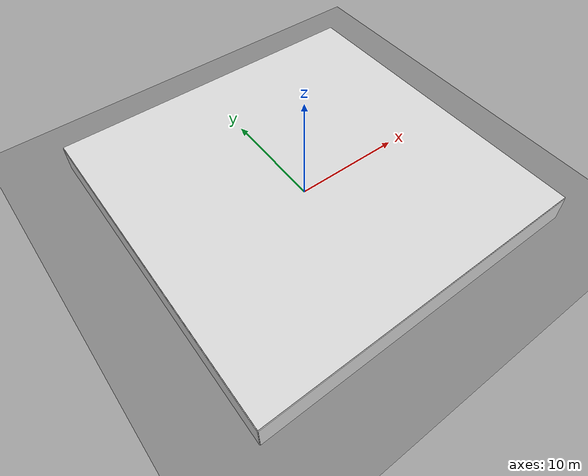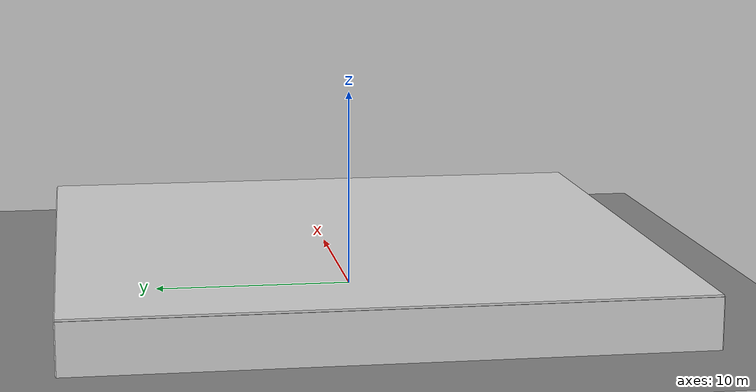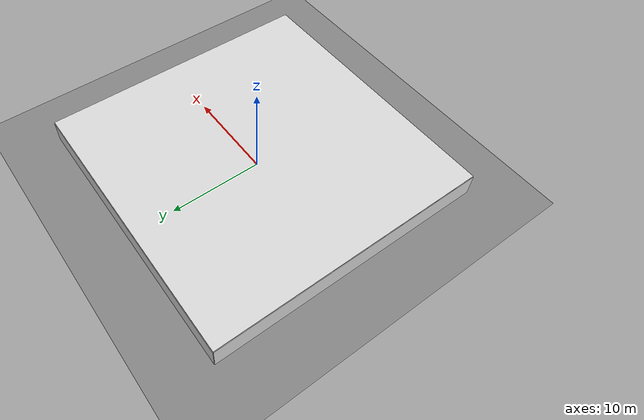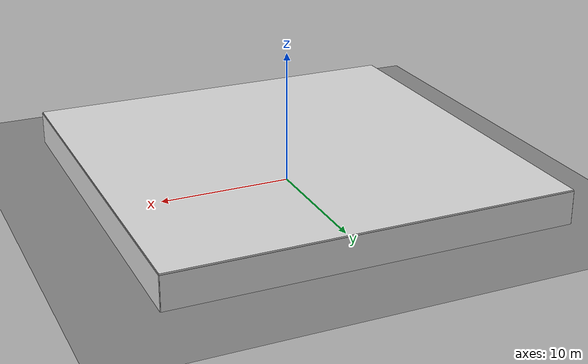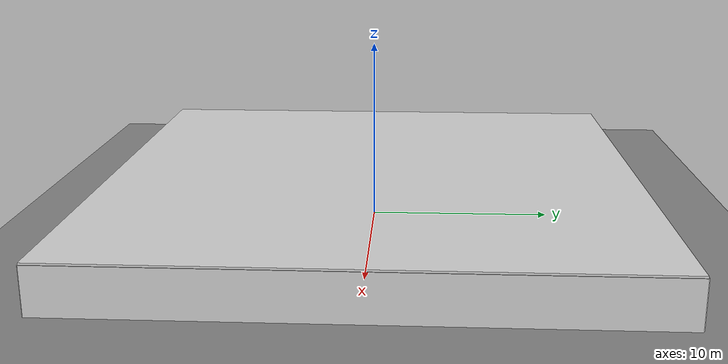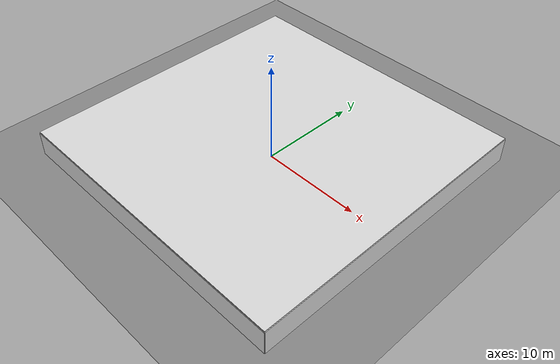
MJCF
<mujoco model="scene">

  <visual>
    <headlight diffuse="0.6 0.6 0.6" ambient="0.3 0.3 0.3" specular="0 0 0"/>
    <rgba haze="0.871 0.616 0.4 0.5"/>
    <global azimuth="-130" elevation="-20"/>
  </visual>

  <asset>
    <texture builtin="gradient" height="100" rgb1="0.9 0.9 0.9" rgb2="0.55 0.25 0.0" type="skybox" width="100"/>
    <include file="../../room/objects/materials.xml"/>
  </asset>

    <worldbody>
        <geom name="floor" friction="1 .1 .1" pos="0 0 0" size="0 0 0.125" type="plane" material="mat_floor" condim="3" conaffinity="1" contype="1" group="2"/>
        <light cutoff="1000" diffuse="1.5 1.5 1.5" dir="-0 0 -1.3" directional="true" exponent="10" pos="0 0 10.3" specular=".1 .1 .1" castshadow="false"/>

        <geom name="wall_negx" type="box" pos="-15.0 0.0 1.25" size="0.05 15.0 1.25" material="mat_wall"/>
        <geom name="wall_posx" type="box" pos=" 15.0 0.0 1.25" size="0.05 15.0 1.25" material="mat_wall"/>
        <geom name="wall_negy" type="box" pos="0.0 -15.0 1.25" size="15.0 0.05 1.25" material="mat_wall"/>
        <geom name="wall_posy" type="box" pos="0.0  15.0 1.25" size="15.0 0.05 1.25" material="mat_wall"/>

        <geom name="ceiling" type="box"
          pos="0 0 2.55"
          size="15.0 15.0 0.05"
          material="mat_wall"
          contype="1" conaffinity="1"
        />

        <!-- SCENARIO: chair_05 -->
        <!-- TARGET_BODY_NAME: chair_target -->
        <!-- LAYOUT: target=chair, distance=medium, side=right, difficulty=moderate -->

        <!-- TARGET: chair -->
        <body name="chair_target" pos="4.3629 -1.3307 0.0" euler="0 0 -0.3064">
          <include file="../../room/objects/chair.xml"/>
        </body>

        <!-- OBSTRUCTOR: none -->

        <!-- DISTRACTOR: couch -->
        <body name="couch_distractor1" pos="2.4733 -1.7714 0.0" euler="0 0 1.7446">
          <include file="../../room/objects/couch.xml"/>
        </body>
        <!-- DISTRACTOR: bookshelf -->
        <body name="bookshelf_distractor2" pos="6.1533 -0.4438 0.0" euler="0 0 -0.7934">
          <include file="../../room/objects/bookshelf.xml"/>
        </body>
    </worldbody>
</mujoco>

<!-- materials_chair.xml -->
<mujoco>
  <texture name="tex_wood_chair" type="2d" file="oak_veneer_01_diff_2k.png"/>
  <material name="mat_wood_chair"
            texture="tex_wood_chair"
            texrepeat="1.2 1.2"
            texuniform="true"
            rgba="1 1 1 1"
            specular="0.22"
            shininess="0.35"
            reflectance="0.04"/>
</mujoco>

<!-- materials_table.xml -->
<mujoco>
  <texture name="tex_wood_table" type="2d" file="wood_table_001_diff_2k.png"/>
  <material name="mat_wood_table"
            texture="tex_wood_table"
            texrepeat="1.2 1.2"
            texuniform="true"
            rgba="1 1 1 1"
            specular="0.22"
            shininess="0.35"
            reflectance="0.04"/>
</mujoco>

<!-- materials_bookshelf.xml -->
<mujoco>
  <texture name="tex_bookshelf_wood"
           type="2d"
           file="oak_veneer_01_diff_2k.png"/>

  <material name="mat_wood_bookshelf"
            texture="tex_bookshelf_wood"
            texrepeat="1.2 1.2"
            texuniform="true"
            rgba="1 1 1 1"
            specular="0.22"
            shininess="0.35"
            reflectance="0.04"/>
</mujoco>

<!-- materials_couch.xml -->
<mujoco>
  <texture name="tex_wood_couch" type="2d" file="wood_table_001_diff_2k.png"/>
  <material name="mat_wood_couch"
            texture="tex_wood_couch"
            texrepeat="1.2 1.2"
            texuniform="true"
            rgba="1 1 1 1"
            specular="0.22"
            shininess="0.35"
            reflectance="0.04"/>

  <texture name="tex_fabric" type="2d" file="rough_linen_diff_2k.png"/>
  <material name="mat_fabric"
            texture="tex_fabric"
            texrepeat="1.2 1.2"
            texuniform="true"
            rgba="1 1 1 1"
            specular="0.10"
            shininess="0.08"
            reflectance="0.01"/>
</mujoco>

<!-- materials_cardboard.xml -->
<mujoco>
  <texture name="tex_cardboard" type="2d" file="cardboard.png"/>
  <material name="mat_cardboard"
            texture="tex_cardboard"
            texrepeat="1.2 1.2"
            texuniform="true"
            rgba="1 1 1 1"
            specular="0.10"
            shininess="0.08"
            reflectance="0.01"/>
</mujoco>

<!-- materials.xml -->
<mujoco>
  <material name="mat_wall" rgba="0.85 0.85 0.85 1"/>
  <include file="materials_chair.xml"/>

  <include file="materials_table.xml"/>

  <include file="materials_bookshelf.xml"/>
  <material name="mat_book_red" rgba="0.70 0.18 0.16 1"/>
  <material name="mat_book_blue" rgba="0.16 0.31 0.62 1"/>
  <material name="mat_book_green" rgba="0.22 0.45 0.24 1"/>
  <material name="mat_book_yellow" rgba="0.78 0.66 0.22 1"/>
  <material name="mat_book_dark" rgba="0.20 0.18 0.17 1"/>

  <include file="materials_couch.xml"/>
  <include file="materials_cardboard.xml"/>

  <texture name="tex_metal" type="2d" file="metal.png"/>
  <material name="mat_metal" texture="tex_metal" texrepeat="2 2" reflectance="0.3"/>
  <material name="mat_trash_can_dark_green"
            texture="tex_metal"
            texrepeat="2 2"
            rgba="0.10 0.18 0.12 1"
            specular="0.18"
            shininess="0.20"
            reflectance="0.02"/>

  <texture name="tex_floor" type="2d" builtin="checker" width="512" height="512"
           rgb1="0.55 0.55 0.55" rgb2="0.50 0.50 0.50"/>
  <material name="mat_floor" texture="tex_floor" texrepeat="4 4" reflectance="0.00"/>

</mujoco>

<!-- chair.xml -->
<mujoco>
  <body>
    <!-- seat frame and seat board -->
    <geom name="chair_seat_top" type="box"
          pos="0 0 0.43" size="0.24 0.22 0.018"
          material="mat_wood_chair"/>
    <geom name="chair_helper_front" type="box"
          pos="0 0.185 0.185" size="0.187 0.012 0.185"
          rgba="0 0 0 0"/>
    <geom name="chair_helper_back" type="box"
          pos="0 -0.185 0.185" size="0.187 0.012 0.185"
          rgba="0 0 0 0"/>
    <geom name="chair_helper_left" type="box"
          pos="-0.205 0 0.185" size="0.012 0.167 0.185"
          rgba="0 0 0 0"/>
    <geom name="chair_helper_right" type="box"
          pos="0.205 0 0.185" size="0.012 0.167 0.185"
          rgba="0 0 0 0"/>
    <geom name="chair_seat_apron_front" type="box"
          pos="0 0.195 0.385" size="0.21 0.015 0.028"
          material="mat_wood_chair"/>
    <geom name="chair_seat_apron_back" type="box"
          pos="0 -0.195 0.385" size="0.21 0.015 0.028"
          material="mat_wood_chair"/>
    <geom name="chair_seat_apron_left" type="box"
          pos="-0.225 0 0.385" size="0.015 0.18 0.028"
          material="mat_wood_chair"/>
    <geom name="chair_seat_apron_right" type="box"
          pos="0.225 0 0.385" size="0.015 0.18 0.028"
          material="mat_wood_chair"/>

    <!-- front legs -->
    <geom name="chair_leg_fl" type="box"
          pos="-0.205 0.185 0.195" size="0.018 0.018 0.195"
          material="mat_wood_chair"/>
    <geom name="chair_leg_fr" type="box"
          pos="0.205 0.185 0.195" size="0.018 0.018 0.195"
          material="mat_wood_chair"/>

    <!-- rear legs extend upward into the backrest posts -->
    <geom name="chair_leg_rl" type="box"
          pos="-0.205 -0.185 0.365" size="0.019 0.019 0.535"
          material="mat_wood_chair"/>
    <geom name="chair_leg_rr" type="box"
          pos="0.205 -0.185 0.365" size="0.019 0.019 0.535"
          material="mat_wood_chair"/>

    <!-- lower stretchers -->
    <geom name="chair_stretcher_front" type="box"
          pos="0 0.185 0.165" size="0.187 0.012 0.012"
          material="mat_wood_chair"/>
    <geom name="chair_stretcher_back" type="box"
          pos="0 -0.185 0.165" size="0.187 0.012 0.012"
          material="mat_wood_chair"/>
    <geom name="chair_stretcher_left" type="box"
          pos="-0.205 0 0.150" size="0.012 0.185 0.012"
          material="mat_wood_chair"/>
    <geom name="chair_stretcher_right" type="box"
          pos="0.205 0 0.150" size="0.012 0.185 0.012"
          material="mat_wood_chair"/>

    <!-- backrest frame -->
    <geom name="chair_back_top" type="box"
          pos="0 -0.185 0.865" size="0.18 0.016 0.022"
          material="mat_wood_chair"/>
    <geom name="chair_back_mid" type="box"
          pos="0 -0.178 0.710" size="0.155 0.013 0.018"
          material="mat_wood_chair"/>

    <!-- vertical back slats -->
    <geom name="chair_back_slat_l" type="box"
          pos="-0.085 -0.175 0.565" size="0.014 0.010 0.160"
          material="mat_wood_chair"/>
    <geom name="chair_back_slat_c" type="box"
          pos="0 -0.175 0.565" size="0.014 0.010 0.160"
          material="mat_wood_chair"/>
    <geom name="chair_back_slat_r" type="box"
          pos="0.085 -0.175 0.565" size="0.014 0.010 0.160"
          material="mat_wood_chair"/>
  </body>
</mujoco>

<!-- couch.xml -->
<mujoco>
<body>
  <!-- legs -->
  <geom name="couch_leg_fl" type="box"
        pos="-0.50 0.26 0.04" size="0.03 0.03 0.04"
        material="mat_wood_couch"/>
  <geom name="couch_leg_fr" type="box"
        pos="0.50 0.26 0.04" size="0.03 0.03 0.04"
        material="mat_wood_couch"/>
  <geom name="couch_leg_rl" type="box"
        pos="-0.50 -0.26 0.04" size="0.03 0.03 0.04"
        material="mat_wood_couch"/>
  <geom name="couch_leg_rr" type="box"
        pos="0.50 -0.26 0.04" size="0.03 0.03 0.04"
        material="mat_wood_couch"/>

  <!-- soft seat base -->
  <geom name="couch_seat_base" type="box"
        pos="0 0 0.16" size="0.54 0.27 0.08"
        material="mat_fabric"/>
  <geom name="couch_seat_front_roll" type="capsule"
        fromto="-0.48 0.24 0.195 0.48 0.24 0.195"
        size="0.055"
        material="mat_fabric"/>

  <!-- seat cushions -->
  <geom name="couch_seat_left" type="ellipsoid"
        pos="-0.22 0.02 0.255" size="0.17 0.21 0.065"
        material="mat_fabric"/>
  <geom name="couch_seat_mid" type="ellipsoid"
        pos="0.00 0.02 0.255" size="0.15 0.21 0.065"
        material="mat_fabric"/>
  <geom name="couch_seat_right" type="ellipsoid"
        pos="0.22 0.02 0.255" size="0.17 0.21 0.065"
        material="mat_fabric"/>

  <!-- back cushions -->
  <geom name="couch_back_core" type="box"
        pos="0 -0.160 0.37" size="0.53 0.105 0.16"
        material="mat_fabric"/>
  <geom name="couch_back_top_roll" type="capsule"
        fromto="-0.48 -0.145 0.52 0.48 -0.145 0.52"
        size="0.060"
        material="mat_fabric"/>
  <geom name="couch_back_left" type="ellipsoid"
        pos="-0.22 -0.095 0.39" size="0.16 0.100 0.15"
        material="mat_fabric"/>
  <geom name="couch_back_mid" type="ellipsoid"
        pos="0.00 -0.095 0.39" size="0.14 0.100 0.15"
        material="mat_fabric"/>
  <geom name="couch_back_right" type="ellipsoid"
        pos="0.22 -0.095 0.39" size="0.16 0.100 0.15"
        material="mat_fabric"/>

  <!-- softer armrests -->
  <geom name="couch_arm_left_core" type="box"
        pos="-0.49 0.02 0.34" size="0.055 0.24 0.15"
        material="mat_fabric"/>
  <geom name="couch_arm_right_core" type="box"
        pos="0.49 0.02 0.34" size="0.055 0.24 0.15"
        material="mat_fabric"/>
  <geom name="couch_arm_left_top" type="capsule"
        fromto="-0.49 -0.19 0.49 -0.49 0.18 0.49"
        size="0.050"
        material="mat_fabric"/>
  <geom name="couch_arm_right_top" type="capsule"
        fromto="0.49 -0.19 0.49 0.49 0.18 0.49"
        size="0.050"
        material="mat_fabric"/>
</body>
</mujoco>

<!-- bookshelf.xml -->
<mujoco>
  <body name="bookshelf" pos="0 0 0">
      <!-- Outer carcass -->
      <geom name="bookshelf_left_panel" type="box"
            pos="-0.285 0 0.54" size="0.025 0.12 0.54"
            material="mat_wood_bookshelf"/>

      <geom name="bookshelf_right_panel" type="box"
            pos="0.285 0 0.54" size="0.025 0.12 0.54"
            material="mat_wood_bookshelf"/>

      <geom name="bookshelf_bottom_panel" type="box"
            pos="0 0 0.035" size="0.285 0.12 0.035"
            material="mat_wood_bookshelf"/>

      <geom name="bookshelf_top_panel" type="box"
            pos="0 0 1.045" size="0.285 0.12 0.035"
            material="mat_wood_bookshelf"/>

      <!-- invisible collision panels to keep objects inside the shelf -->
      <geom name="bookshelf_front_collision" type="box"
            pos="0 -0.130 0.54" size="0.270 0.012 0.50"
            rgba="0 0 0 0"/>
      <geom name="bookshelf_back_collision" type="box"
            pos="0 0.130 0.54" size="0.270 0.012 0.50"
            rgba="0 0 0 0"/>

      <!-- interior shelves -->
      <geom name="bookshelf_shelf_1" type="box"
            pos="0 0.01 0.29" size="0.255 0.10 0.030"
            material="mat_wood_bookshelf"/>
      <geom name="book_s1_a" type="box"
            pos="-0.18 0.00 0.355" size="0.022 0.070 0.065"
            material="mat_book_red"/>
      <geom name="book_s1_b" type="box"
            pos="-0.12 0.00 0.345" size="0.018 0.070 0.055"
            material="mat_book_blue"/>
      <geom name="book_s1_c" type="box"
            pos="-0.07 0.00 0.360" size="0.020 0.070 0.070"
            material="mat_book_green"/>
      <geom name="book_s1_d" type="box"
            pos="0.02 0.00 0.350" size="0.024 0.070 0.060"
            material="mat_book_yellow"/>
      <geom name="book_s1_e" type="box"
            pos="0.08 0.00 0.340" size="0.018 0.070 0.050"
            material="mat_book_dark"/>
      <geom name="book_s1_f" type="box"
            pos="0.18 0.00 0.355" size="0.026 0.070 0.065"
            material="mat_book_blue"/>

      <geom name="bookshelf_shelf_2" type="box"
            pos="0 0.01 0.56" size="0.255 0.10 0.030"
            material="mat_wood_bookshelf"/>
      <geom name="book_s2_a" type="box"
            pos="-0.20 0.00 0.620" size="0.020 0.070 0.050"
            material="mat_book_green"/>
      <geom name="book_s2_b" type="box"
            pos="-0.15 0.00 0.635" size="0.016 0.070 0.065"
            material="mat_book_red"/>
      <geom name="book_s2_c" type="box"
            pos="-0.10 0.00 0.628" size="0.021 0.070 0.058"
            material="mat_book_dark"/>
      <geom name="book_s2_d" type="box"
            pos="0.04 0.00 0.640" size="0.028 0.070 0.070"
            material="mat_book_blue"/>
      <geom name="book_s2_e" type="box"
            pos="0.11 0.00 0.622" size="0.018 0.070 0.052"
            material="mat_book_yellow"/>
      <geom name="book_s2_f" type="box"
            pos="0.17 0.00 0.632" size="0.022 0.070 0.062"
            material="mat_book_red"/>

      <geom name="bookshelf_shelf_3" type="box"
            pos="0 0.01 0.83" size="0.255 0.10 0.030"
            material="mat_wood_bookshelf"/>
      <geom name="book_s3_a" type="box"
            pos="-0.19 0.00 0.895" size="0.018 0.070 0.065"
            material="mat_book_yellow"/>
      <geom name="book_s3_b" type="box"
            pos="-0.14 0.00 0.885" size="0.022 0.070 0.055"
            material="mat_book_blue"/>
      <geom name="book_s3_c" type="box"
            pos="-0.08 0.00 0.900" size="0.020 0.070 0.070"
            material="mat_book_green"/>
      <geom name="book_s3_d" type="box"
            pos="0.00 0.00 0.890" size="0.026 0.070 0.060"
            material="mat_book_red"/>
      <geom name="book_s3_e" type="box"
            pos="0.10 0.00 0.882" size="0.018 0.070 0.052"
            material="mat_book_dark"/>
      <geom name="book_s3_f" type="box"
            pos="0.17 0.00 0.892" size="0.024 0.070 0.062"
            material="mat_book_green"/>

      <!-- front face frame -->
      <geom name="bookshelf_front_left_stile" type="box"
            pos="-0.268 -0.108 0.54" size="0.012 0.010 0.54"
            material="mat_wood_bookshelf"/>

      <geom name="bookshelf_front_right_stile" type="box"
            pos="0.268 -0.108 0.54" size="0.012 0.010 0.54"
            material="mat_wood_bookshelf"/>

      <geom name="bookshelf_front_top_rail" type="box"
            pos="0 -0.108 1.03" size="0.255 0.010 0.012"
            material="mat_wood_bookshelf"/>

      <geom name="bookshelf_front_mid_rail_1" type="box"
            pos="0 -0.108 0.81" size="0.255 0.010 0.010"
            material="mat_wood_bookshelf"/>

      <geom name="bookshelf_front_mid_rail_2" type="box"
            pos="0 -0.108 0.54" size="0.255 0.010 0.010"
            material="mat_wood_bookshelf"/>

      <geom name="bookshelf_front_bottom_rail" type="box"
            pos="0 -0.108 0.05" size="0.255 0.010 0.014"
            material="mat_wood_bookshelf"/>

      <!-- feet -->
      <geom name="bookshelf_left_foot" type="box"
            pos="-0.22 -0.06 0.008" size="0.04 0.04 0.008"
            material="mat_wood_bookshelf"/>

      <geom name="bookshelf_right_foot" type="box"
            pos="0.22 -0.06 0.008" size="0.04 0.04 0.008"
            material="mat_wood_bookshelf"/>
  </body>
</mujoco>
